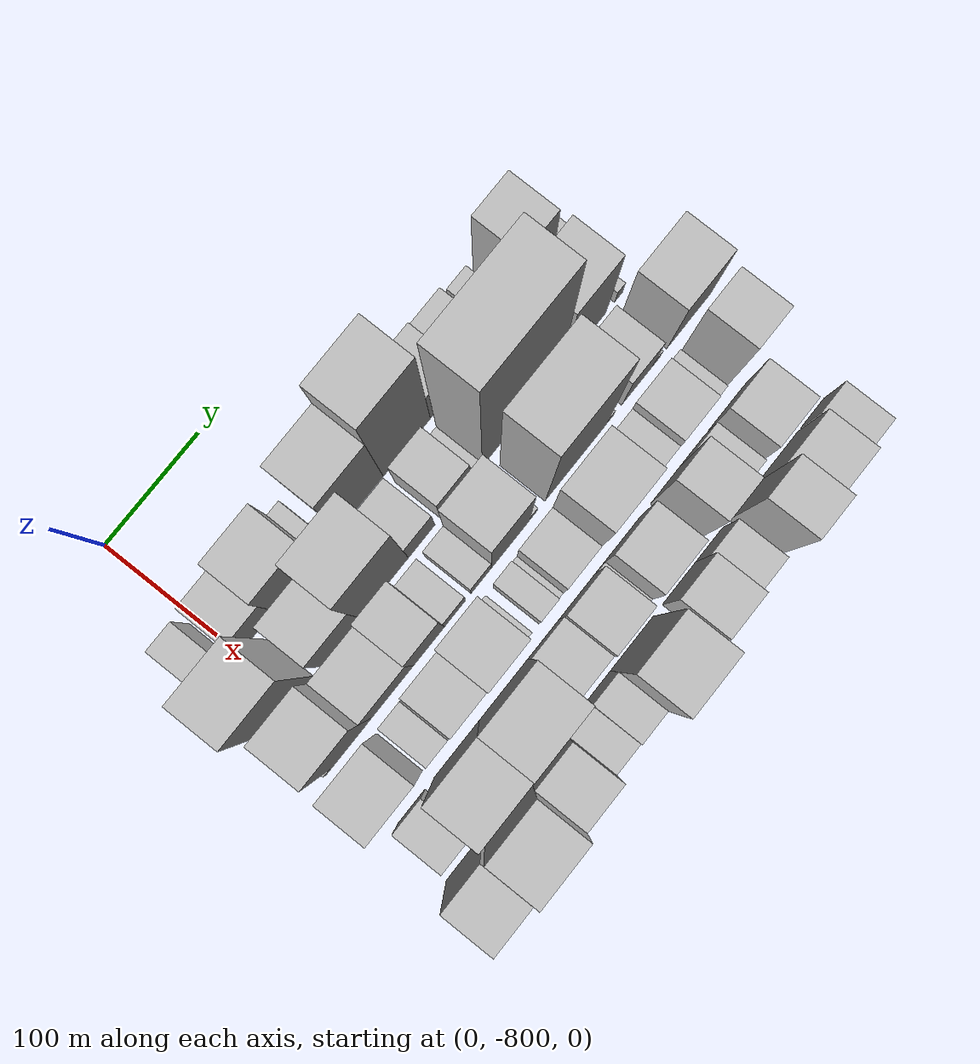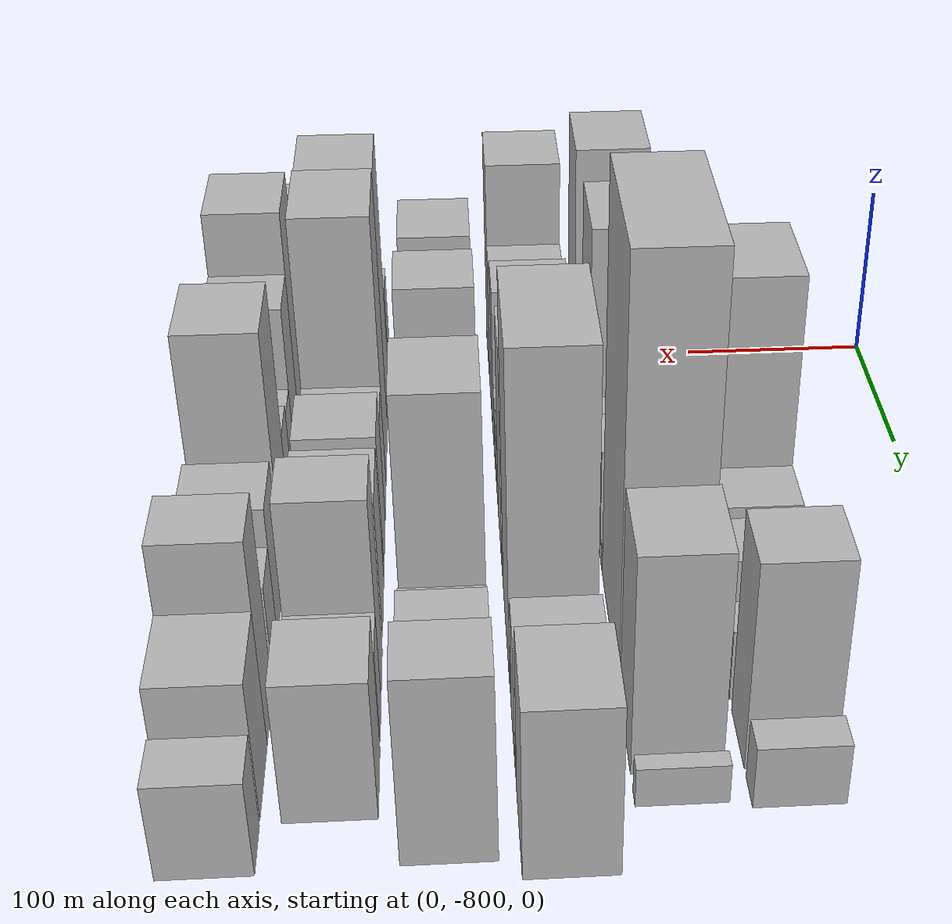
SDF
<sdf version="1.6">
 <world name="default">
  <model name="building_1">
   <static>1</static>
   <pose>100.0000 -817.6020 0 0.000000 0.000000 0.000000</pose>
   <link name="link">
    <pose>0 0 24.00 0 0 0</pose>
    <collision name="collision"><geometry><box><size>40.0000 24.7960 48.0000</size></box></geometry></collision>
    <visual name="visual">
     <cast_shadows>0</cast_shadows>
     <geometry><box><size>40.0000 24.7960 48.0000</size></box></geometry>
     <material>
      <script>
       <uri>model://HANNAS_wall/materials/scripts</uri>
       <uri>model://HANNAS_wall/materials/textures</uri>
       <name>vrc/HANNAS_wall</name>
      </script>
     </material>
    </visual>
   </link>
  </model>
  <model name="building_2">
   <static>1</static>
   <pose>100.0000 -778.4976 0 0.000000 0.000000 0.000000</pose>
   <link name="link">
    <pose>0 0 30.00 0 0 0</pose>
    <collision name="collision"><geometry><box><size>40.0000 33.4130 60.0000</size></box></geometry></collision>
    <visual name="visual">
     <cast_shadows>0</cast_shadows>
     <geometry><box><size>40.0000 33.4130 60.0000</size></box></geometry>
     <material>
      <script>
       <uri>model://HANNAS_wall/materials/scripts</uri>
       <uri>model://HANNAS_wall/materials/textures</uri>
       <name>vrc/HANNAS_wall</name>
      </script>
     </material>
    </visual>
   </link>
  </model>
  <model name="building_3">
   <static>1</static>
   <pose>100.0000 -737.9325 0 0.000000 0.000000 0.000000</pose>
   <link name="link">
    <pose>0 0 43.50 0 0 0</pose>
    <collision name="collision"><geometry><box><size>40.0000 47.7172 87.0000</size></box></geometry></collision>
    <visual name="visual">
     <cast_shadows>0</cast_shadows>
     <geometry><box><size>40.0000 47.7172 87.0000</size></box></geometry>
     <material>
      <script>
       <uri>model://HANNAS_wall/materials/scripts</uri>
       <uri>model://HANNAS_wall/materials/textures</uri>
       <name>vrc/HANNAS_wall</name>
      </script>
     </material>
    </visual>
   </link>
  </model>
  <model name="building_4">
   <static>1</static>
   <pose>100.0000 -707.8373 0 0.000000 0.000000 0.000000</pose>
   <link name="link">
    <pose>0 0 13.50 0 0 0</pose>
    <collision name="collision"><geometry><box><size>40.0000 12.4731 27.0000</size></box></geometry></collision>
    <visual name="visual">
     <cast_shadows>0</cast_shadows>
     <geometry><box><size>40.0000 12.4731 27.0000</size></box></geometry>
     <material>
      <script>
       <uri>model://HANNAS_wall/materials/scripts</uri>
       <uri>model://HANNAS_wall/materials/textures</uri>
       <name>vrc/HANNAS_wall</name>
      </script>
     </material>
    </visual>
   </link>
  </model>
  <model name="building_5">
   <static>1</static>
   <pose>100.0000 -667.6534 0 0.000000 0.000000 0.000000</pose>
   <link name="link">
    <pose>0 0 60.00 0 0 0</pose>
    <collision name="collision"><geometry><box><size>40.0000 47.8948 120.0000</size></box></geometry></collision>
    <visual name="visual">
     <cast_shadows>0</cast_shadows>
     <geometry><box><size>40.0000 47.8948 120.0000</size></box></geometry>
     <material>
      <script>
       <uri>model://HANNAS_wall/materials/scripts</uri>
       <uri>model://HANNAS_wall/materials/textures</uri>
       <name>vrc/HANNAS_wall</name>
      </script>
     </material>
    </visual>
   </link>
  </model>
  <model name="building_6">
   <static>1</static>
   <pose>100.0000 -617.7483 0 0.000000 0.000000 0.000000</pose>
   <link name="link">
    <pose>0 0 82.50 0 0 0</pose>
    <collision name="collision"><geometry><box><size>40.0000 51.9155 165.0000</size></box></geometry></collision>
    <visual name="visual">
     <cast_shadows>0</cast_shadows>
     <geometry><box><size>40.0000 51.9155 165.0000</size></box></geometry>
     <material>
      <script>
       <uri>model://HANNAS_wall/materials/scripts</uri>
       <uri>model://HANNAS_wall/materials/textures</uri>
       <name>vrc/HANNAS_wall</name>
      </script>
     </material>
    </visual>
   </link>
  </model>
  <model name="building_7">
   <static>1</static>
   <pose>100.0000 -575.8637 0 0.000000 0.000000 0.000000</pose>
   <link name="link">
    <pose>0 0 31.50 0 0 0</pose>
    <collision name="collision"><geometry><box><size>40.0000 31.8537 63.0000</size></box></geometry></collision>
    <visual name="visual">
     <cast_shadows>0</cast_shadows>
     <geometry><box><size>40.0000 31.8537 63.0000</size></box></geometry>
     <material>
      <script>
       <uri>model://HANNAS_wall/materials/scripts</uri>
       <uri>model://HANNAS_wall/materials/textures</uri>
       <name>vrc/HANNAS_wall</name>
      </script>
     </material>
    </visual>
   </link>
  </model>
  <model name="building_8">
   <static>1</static>
   <pose>100.0000 -543.9341 0 0.000000 0.000000 0.000000</pose>
   <link name="link">
    <pose>0 0 28.50 0 0 0</pose>
    <collision name="collision"><geometry><box><size>40.0000 32.0055 57.0000</size></box></geometry></collision>
    <visual name="visual">
     <cast_shadows>0</cast_shadows>
     <geometry><box><size>40.0000 32.0055 57.0000</size></box></geometry>
     <material>
      <script>
       <uri>model://HANNAS_wall/materials/scripts</uri>
       <uri>model://HANNAS_wall/materials/textures</uri>
       <name>vrc/HANNAS_wall</name>
      </script>
     </material>
    </visual>
   </link>
  </model>
  <model name="building_9">
   <static>1</static>
   <pose>100.0000 -511.4960 0 0.000000 0.000000 0.000000</pose>
   <link name="link">
    <pose>0 0 19.50 0 0 0</pose>
    <collision name="collision"><geometry><box><size>40.0000 20.8707 39.0000</size></box></geometry></collision>
    <visual name="visual">
     <cast_shadows>0</cast_shadows>
     <geometry><box><size>40.0000 20.8707 39.0000</size></box></geometry>
     <material>
      <script>
       <uri>model://HANNAS_wall/materials/scripts</uri>
       <uri>model://HANNAS_wall/materials/textures</uri>
       <name>vrc/HANNAS_wall</name>
      </script>
     </material>
    </visual>
   </link>
  </model>
  <model name="building_10">
   <static>1</static>
   <pose>100.0000 -475.5897 0 0.000000 0.000000 0.000000</pose>
   <link name="link">
    <pose>0 0 55.50 0 0 0</pose>
    <collision name="collision"><geometry><box><size>40.0000 36.9420 111.0000</size></box></geometry></collision>
    <visual name="visual">
     <cast_shadows>0</cast_shadows>
     <geometry><box><size>40.0000 36.9420 111.0000</size></box></geometry>
     <material>
      <script>
       <uri>model://HANNAS_wall/materials/scripts</uri>
       <uri>model://HANNAS_wall/materials/textures</uri>
       <name>vrc/HANNAS_wall</name>
      </script>
     </material>
    </visual>
   </link>
  </model>
  <model name="building_11">
   <static>1</static>
   <pose>100.0000 -443.1418 0 0.000000 0.000000 0.000000</pose>
   <link name="link">
    <pose>0 0 16.50 0 0 0</pose>
    <collision name="collision"><geometry><box><size>40.0000 17.9537 33.0000</size></box></geometry></collision>
    <visual name="visual">
     <cast_shadows>0</cast_shadows>
     <geometry><box><size>40.0000 17.9537 33.0000</size></box></geometry>
     <material>
      <script>
       <uri>model://HANNAS_wall/materials/scripts</uri>
       <uri>model://HANNAS_wall/materials/textures</uri>
       <name>vrc/HANNAS_wall</name>
      </script>
     </material>
    </visual>
   </link>
  </model>
  <model name="building_45">
   <static>1</static>
   <pose>149.0000 -804.9855 0 0.000000 0.000000 0.000000</pose>
   <link name="link">
    <pose>0 0 70.50 0 0 0</pose>
    <collision name="collision"><geometry><box><size>40.0000 50.0291 141.0000</size></box></geometry></collision>
    <visual name="visual">
     <cast_shadows>0</cast_shadows>
     <geometry><box><size>40.0000 50.0291 141.0000</size></box></geometry>
     <material>
      <script>
       <uri>model://HANNAS_wall/materials/scripts</uri>
       <uri>model://HANNAS_wall/materials/textures</uri>
       <name>vrc/HANNAS_wall</name>
      </script>
     </material>
    </visual>
   </link>
  </model>
  <model name="building_46">
   <static>1</static>
   <pose>149.0000 -750.7019 0 0.000000 0.000000 0.000000</pose>
   <link name="link">
    <pose>0 0 37.50 0 0 0</pose>
    <collision name="collision"><geometry><box><size>40.0000 42.5380 75.0000</size></box></geometry></collision>
    <visual name="visual">
     <cast_shadows>0</cast_shadows>
     <geometry><box><size>40.0000 42.5380 75.0000</size></box></geometry>
     <material>
      <script>
       <uri>model://HANNAS_wall/materials/scripts</uri>
       <uri>model://HANNAS_wall/materials/textures</uri>
       <name>vrc/HANNAS_wall</name>
      </script>
     </material>
    </visual>
   </link>
  </model>
  <model name="building_47">
   <static>1</static>
   <pose>149.0000 -703.0774 0 0.000000 0.000000 0.000000</pose>
   <link name="link">
    <pose>0 0 73.50 0 0 0</pose>
    <collision name="collision"><geometry><box><size>40.0000 52.7112 147.0000</size></box></geometry></collision>
    <visual name="visual">
     <cast_shadows>0</cast_shadows>
     <geometry><box><size>40.0000 52.7112 147.0000</size></box></geometry>
     <material>
      <script>
       <uri>model://HANNAS_wall/materials/scripts</uri>
       <uri>model://HANNAS_wall/materials/textures</uri>
       <name>vrc/HANNAS_wall</name>
      </script>
     </material>
    </visual>
   </link>
  </model>
  <model name="building_48">
   <static>1</static>
   <pose>149.0000 -662.2411 0 0.000000 0.000000 0.000000</pose>
   <link name="link">
    <pose>0 0 25.50 0 0 0</pose>
    <collision name="collision"><geometry><box><size>40.0000 28.9613 51.0000</size></box></geometry></collision>
    <visual name="visual">
     <cast_shadows>0</cast_shadows>
     <geometry><box><size>40.0000 28.9613 51.0000</size></box></geometry>
     <material>
      <script>
       <uri>model://HANNAS_wall/materials/scripts</uri>
       <uri>model://HANNAS_wall/materials/textures</uri>
       <name>vrc/HANNAS_wall</name>
      </script>
     </material>
    </visual>
   </link>
  </model>
  <model name="building_49">
   <static>1</static>
   <pose>149.0000 -624.8514 0 0.000000 0.000000 0.000000</pose>
   <link name="link">
    <pose>0 0 31.50 0 0 0</pose>
    <collision name="collision"><geometry><box><size>40.0000 33.8181 63.0000</size></box></geometry></collision>
    <visual name="visual">
     <cast_shadows>0</cast_shadows>
     <geometry><box><size>40.0000 33.8181 63.0000</size></box></geometry>
     <material>
      <script>
       <uri>model://HANNAS_wall/materials/scripts</uri>
       <uri>model://HANNAS_wall/materials/textures</uri>
       <name>vrc/HANNAS_wall</name>
      </script>
     </material>
    </visual>
   </link>
  </model>
  <model name="building_50">
   <static>1</static>
   <pose>149.0000 -599.2506 0 0.000000 0.000000 0.000000</pose>
   <link name="link">
    <pose>0 0 7.50 0 0 0</pose>
    <collision name="collision"><geometry><box><size>40.0000 7.3835 15.0000</size></box></geometry></collision>
    <visual name="visual">
     <cast_shadows>0</cast_shadows>
     <geometry><box><size>40.0000 7.3835 15.0000</size></box></geometry>
     <material>
      <script>
       <uri>model://HANNAS_wall/materials/scripts</uri>
       <uri>model://HANNAS_wall/materials/textures</uri>
       <name>vrc/HANNAS_wall</name>
      </script>
     </material>
    </visual>
   </link>
  </model>
  <model name="building_51">
   <static>1</static>
   <pose>149.0000 -552.5706 0 0.000000 0.000000 0.000000</pose>
   <link name="link">
    <pose>0 0 112.50 0 0 0</pose>
    <collision name="collision"><geometry><box><size>40.0000 85.9766 225.0000</size></box></geometry></collision>
    <visual name="visual">
     <cast_shadows>0</cast_shadows>
     <geometry><box><size>40.0000 85.9766 225.0000</size></box></geometry>
     <material>
      <script>
       <uri>model://HANNAS_wall/materials/scripts</uri>
       <uri>model://HANNAS_wall/materials/textures</uri>
       <name>vrc/HANNAS_wall</name>
      </script>
     </material>
    </visual>
   </link>
  </model>
  <model name="building_52">
   <static>1</static>
   <pose>149.0000 -480.2755 0 0.000000 0.000000 0.000000</pose>
   <link name="link">
    <pose>0 0 58.50 0 0 0</pose>
    <collision name="collision"><geometry><box><size>40.0000 46.6135 117.0000</size></box></geometry></collision>
    <visual name="visual">
     <cast_shadows>0</cast_shadows>
     <geometry><box><size>40.0000 46.6135 117.0000</size></box></geometry>
     <material>
      <script>
       <uri>model://HANNAS_wall/materials/scripts</uri>
       <uri>model://HANNAS_wall/materials/textures</uri>
       <name>vrc/HANNAS_wall</name>
      </script>
     </material>
    </visual>
   </link>
  </model>
  <model name="building_53">
   <static>1</static>
   <pose>149.0000 -442.4976 0 0.000000 0.000000 0.000000</pose>
   <link name="link">
    <pose>0 0 10.50 0 0 0</pose>
    <collision name="collision"><geometry><box><size>40.0000 8.9423 21.0000</size></box></geometry></collision>
    <visual name="visual">
     <cast_shadows>0</cast_shadows>
     <geometry><box><size>40.0000 8.9423 21.0000</size></box></geometry>
     <material>
      <script>
       <uri>model://HANNAS_wall/materials/scripts</uri>
       <uri>model://HANNAS_wall/materials/textures</uri>
       <name>vrc/HANNAS_wall</name>
      </script>
     </material>
    </visual>
   </link>
  </model>
  <model name="building_89">
   <static>1</static>
   <pose>198.0000 -822.9806 0 0.000000 0.000000 0.000000</pose>
   <link name="link">
    <pose>0 0 7.50 0 0 0</pose>
    <collision name="collision"><geometry><box><size>40.0000 6.0387 15.0000</size></box></geometry></collision>
    <visual name="visual">
     <cast_shadows>0</cast_shadows>
     <geometry><box><size>40.0000 6.0387 15.0000</size></box></geometry>
     <material>
      <script>
       <uri>model://HANNAS_wall/materials/scripts</uri>
       <uri>model://HANNAS_wall/materials/textures</uri>
       <name>vrc/HANNAS_wall</name>
      </script>
     </material>
    </visual>
   </link>
  </model>
  <model name="building_90">
   <static>1</static>
   <pose>198.0000 -798.2989 0 0.000000 0.000000 0.000000</pose>
   <link name="link">
    <pose>0 0 67.50 0 0 0</pose>
    <collision name="collision"><geometry><box><size>40.0000 43.3248 135.0000</size></box></geometry></collision>
    <visual name="visual">
     <cast_shadows>0</cast_shadows>
     <geometry><box><size>40.0000 43.3248 135.0000</size></box></geometry>
     <material>
      <script>
       <uri>model://HANNAS_wall/materials/scripts</uri>
       <uri>model://HANNAS_wall/materials/textures</uri>
       <name>vrc/HANNAS_wall</name>
      </script>
     </material>
    </visual>
   </link>
  </model>
  <model name="building_91">
   <static>1</static>
   <pose>198.0000 -754.1466 0 0.000000 0.000000 0.000000</pose>
   <link name="link">
    <pose>0 0 43.50 0 0 0</pose>
    <collision name="collision"><geometry><box><size>40.0000 44.9798 87.0000</size></box></geometry></collision>
    <visual name="visual">
     <cast_shadows>0</cast_shadows>
     <geometry><box><size>40.0000 44.9798 87.0000</size></box></geometry>
     <material>
      <script>
       <uri>model://HANNAS_wall/materials/scripts</uri>
       <uri>model://HANNAS_wall/materials/textures</uri>
       <name>vrc/HANNAS_wall</name>
      </script>
     </material>
    </visual>
   </link>
  </model>
  <model name="building_92">
   <static>1</static>
   <pose>198.0000 -714.8479 0 0.000000 0.000000 0.000000</pose>
   <link name="link">
    <pose>0 0 51.00 0 0 0</pose>
    <collision name="collision"><geometry><box><size>40.0000 33.6177 102.0000</size></box></geometry></collision>
    <visual name="visual">
     <cast_shadows>0</cast_shadows>
     <geometry><box><size>40.0000 33.6177 102.0000</size></box></geometry>
     <material>
      <script>
       <uri>model://HANNAS_wall/materials/scripts</uri>
       <uri>model://HANNAS_wall/materials/textures</uri>
       <name>vrc/HANNAS_wall</name>
      </script>
     </material>
    </visual>
   </link>
  </model>
  <model name="building_93">
   <static>1</static>
   <pose>198.0000 -686.5756 0 0.000000 0.000000 0.000000</pose>
   <link name="link">
    <pose>0 0 22.50 0 0 0</pose>
    <collision name="collision"><geometry><box><size>40.0000 22.9268 45.0000</size></box></geometry></collision>
    <visual name="visual">
     <cast_shadows>0</cast_shadows>
     <geometry><box><size>40.0000 22.9268 45.0000</size></box></geometry>
     <material>
      <script>
       <uri>model://HANNAS_wall/materials/scripts</uri>
       <uri>model://HANNAS_wall/materials/textures</uri>
       <name>vrc/HANNAS_wall</name>
      </script>
     </material>
    </visual>
   </link>
  </model>
  <model name="building_94">
   <static>1</static>
   <pose>198.0000 -658.2094 0 0.000000 0.000000 0.000000</pose>
   <link name="link">
    <pose>0 0 21.00 0 0 0</pose>
    <collision name="collision"><geometry><box><size>40.0000 21.8054 42.0000</size></box></geometry></collision>
    <visual name="visual">
     <cast_shadows>0</cast_shadows>
     <geometry><box><size>40.0000 21.8054 42.0000</size></box></geometry>
     <material>
      <script>
       <uri>model://HANNAS_wall/materials/scripts</uri>
       <uri>model://HANNAS_wall/materials/textures</uri>
       <name>vrc/HANNAS_wall</name>
      </script>
     </material>
    </visual>
   </link>
  </model>
  <model name="building_95">
   <static>1</static>
   <pose>198.0000 -626.3088 0 0.000000 0.000000 0.000000</pose>
   <link name="link">
    <pose>0 0 61.50 0 0 0</pose>
    <collision name="collision"><geometry><box><size>40.0000 41.9958 123.0000</size></box></geometry></collision>
    <visual name="visual">
     <cast_shadows>0</cast_shadows>
     <geometry><box><size>40.0000 41.9958 123.0000</size></box></geometry>
     <material>
      <script>
       <uri>model://HANNAS_wall/materials/scripts</uri>
       <uri>model://HANNAS_wall/materials/textures</uri>
       <name>vrc/HANNAS_wall</name>
      </script>
     </material>
    </visual>
   </link>
  </model>
  <model name="building_96">
   <static>1</static>
   <pose>198.0000 -600.9416 0 0.000000 0.000000 0.000000</pose>
   <link name="link">
    <pose>0 0 9.00 0 0 0</pose>
    <collision name="collision"><geometry><box><size>40.0000 8.7388 18.0000</size></box></geometry></collision>
    <visual name="visual">
     <cast_shadows>0</cast_shadows>
     <geometry><box><size>40.0000 8.7388 18.0000</size></box></geometry>
     <material>
      <script>
       <uri>model://HANNAS_wall/materials/scripts</uri>
       <uri>model://HANNAS_wall/materials/textures</uri>
       <name>vrc/HANNAS_wall</name>
      </script>
     </material>
    </visual>
   </link>
  </model>
  <model name="building_97">
   <static>1</static>
   <pose>198.0000 -553.2141 0 0.000000 0.000000 0.000000</pose>
   <link name="link">
    <pose>0 0 88.50 0 0 0</pose>
    <collision name="collision"><geometry><box><size>40.0000 68.7161 177.0000</size></box></geometry></collision>
    <visual name="visual">
     <cast_shadows>0</cast_shadows>
     <geometry><box><size>40.0000 68.7161 177.0000</size></box></geometry>
     <material>
      <script>
       <uri>model://HANNAS_wall/materials/scripts</uri>
       <uri>model://HANNAS_wall/materials/textures</uri>
       <name>vrc/HANNAS_wall</name>
      </script>
     </material>
    </visual>
   </link>
  </model>
  <model name="building_98">
   <static>1</static>
   <pose>198.0000 -515.2436 0 0.000000 0.000000 0.000000</pose>
   <link name="link">
    <pose>0 0 9.00 0 0 0</pose>
    <collision name="collision"><geometry><box><size>40.0000 7.2250 18.0000</size></box></geometry></collision>
    <visual name="visual">
     <cast_shadows>0</cast_shadows>
     <geometry><box><size>40.0000 7.2250 18.0000</size></box></geometry>
     <material>
      <script>
       <uri>model://HANNAS_wall/materials/scripts</uri>
       <uri>model://HANNAS_wall/materials/textures</uri>
       <name>vrc/HANNAS_wall</name>
      </script>
     </material>
    </visual>
   </link>
  </model>
  <model name="building_99">
   <static>1</static>
   <pose>198.0000 -484.4618 0 0.000000 0.000000 0.000000</pose>
   <link name="link">
    <pose>0 0 31.50 0 0 0</pose>
    <collision name="collision"><geometry><box><size>40.0000 34.3386 63.0000</size></box></geometry></collision>
    <visual name="visual">
     <cast_shadows>0</cast_shadows>
     <geometry><box><size>40.0000 34.3386 63.0000</size></box></geometry>
     <material>
      <script>
       <uri>model://HANNAS_wall/materials/scripts</uri>
       <uri>model://HANNAS_wall/materials/textures</uri>
       <name>vrc/HANNAS_wall</name>
      </script>
     </material>
    </visual>
   </link>
  </model>
  <model name="building_100">
   <static>1</static>
   <pose>198.0000 -462.9254 0 0.000000 0.000000 0.000000</pose>
   <link name="link">
    <pose>0 0 9.00 0 0 0</pose>
    <collision name="collision"><geometry><box><size>40.0000 8.7342 18.0000</size></box></geometry></collision>
    <visual name="visual">
     <cast_shadows>0</cast_shadows>
     <geometry><box><size>40.0000 8.7342 18.0000</size></box></geometry>
     <material>
      <script>
       <uri>model://HANNAS_wall/materials/scripts</uri>
       <uri>model://HANNAS_wall/materials/textures</uri>
       <name>vrc/HANNAS_wall</name>
      </script>
     </material>
    </visual>
   </link>
  </model>
  <model name="building_101">
   <static>1</static>
   <pose>198.0000 -425.8207 0 0.000000 0.000000 0.000000</pose>
   <link name="link">
    <pose>0 0 45.00 0 0 0</pose>
    <collision name="collision"><geometry><box><size>40.0000 49.4753 90.0000</size></box></geometry></collision>
    <visual name="visual">
     <cast_shadows>0</cast_shadows>
     <geometry><box><size>40.0000 49.4753 90.0000</size></box></geometry>
     <material>
      <script>
       <uri>model://HANNAS_wall/materials/scripts</uri>
       <uri>model://HANNAS_wall/materials/textures</uri>
       <name>vrc/HANNAS_wall</name>
      </script>
     </material>
    </visual>
   </link>
  </model>
  <model name="building_134">
   <static>1</static>
   <pose>247.0000 -806.5773 0 0.000000 0.000000 0.000000</pose>
   <link name="link">
    <pose>0 0 45.00 0 0 0</pose>
    <collision name="collision"><geometry><box><size>40.0000 46.8454 90.0000</size></box></geometry></collision>
    <visual name="visual">
     <cast_shadows>0</cast_shadows>
     <geometry><box><size>40.0000 46.8454 90.0000</size></box></geometry>
     <material>
      <script>
       <uri>model://HANNAS_wall/materials/scripts</uri>
       <uri>model://HANNAS_wall/materials/textures</uri>
       <name>vrc/HANNAS_wall</name>
      </script>
     </material>
    </visual>
   </link>
  </model>
  <model name="building_135">
   <static>1</static>
   <pose>247.0000 -764.8565 0 0.000000 0.000000 0.000000</pose>
   <link name="link">
    <pose>0 0 21.00 0 0 0</pose>
    <collision name="collision"><geometry><box><size>40.0000 22.5961 42.0000</size></box></geometry></collision>
    <visual name="visual">
     <cast_shadows>0</cast_shadows>
     <geometry><box><size>40.0000 22.5961 42.0000</size></box></geometry>
     <material>
      <script>
       <uri>model://HANNAS_wall/materials/scripts</uri>
       <uri>model://HANNAS_wall/materials/textures</uri>
       <name>vrc/HANNAS_wall</name>
      </script>
     </material>
    </visual>
   </link>
  </model>
  <model name="building_136">
   <static>1</static>
   <pose>247.0000 -730.6687 0 0.000000 0.000000 0.000000</pose>
   <link name="link">
    <pose>0 0 37.50 0 0 0</pose>
    <collision name="collision"><geometry><box><size>40.0000 37.7795 75.0000</size></box></geometry></collision>
    <visual name="visual">
     <cast_shadows>0</cast_shadows>
     <geometry><box><size>40.0000 37.7795 75.0000</size></box></geometry>
     <material>
      <script>
       <uri>model://HANNAS_wall/materials/scripts</uri>
       <uri>model://HANNAS_wall/materials/textures</uri>
       <name>vrc/HANNAS_wall</name>
      </script>
     </material>
    </visual>
   </link>
  </model>
  <model name="building_137">
   <static>1</static>
   <pose>247.0000 -691.8126 0 0.000000 0.000000 0.000000</pose>
   <link name="link">
    <pose>0 0 60.00 0 0 0</pose>
    <collision name="collision"><geometry><box><size>40.0000 39.9328 120.0000</size></box></geometry></collision>
    <visual name="visual">
     <cast_shadows>0</cast_shadows>
     <geometry><box><size>40.0000 39.9328 120.0000</size></box></geometry>
     <material>
      <script>
       <uri>model://HANNAS_wall/materials/scripts</uri>
       <uri>model://HANNAS_wall/materials/textures</uri>
       <name>vrc/HANNAS_wall</name>
      </script>
     </material>
    </visual>
   </link>
  </model>
  <model name="building_138">
   <static>1</static>
   <pose>247.0000 -668.2291 0 0.000000 0.000000 0.000000</pose>
   <link name="link">
    <pose>0 0 9.00 0 0 0</pose>
    <collision name="collision"><geometry><box><size>40.0000 7.2340 18.0000</size></box></geometry></collision>
    <visual name="visual">
     <cast_shadows>0</cast_shadows>
     <geometry><box><size>40.0000 7.2340 18.0000</size></box></geometry>
     <material>
      <script>
       <uri>model://HANNAS_wall/materials/scripts</uri>
       <uri>model://HANNAS_wall/materials/textures</uri>
       <name>vrc/HANNAS_wall</name>
      </script>
     </material>
    </visual>
   </link>
  </model>
  <model name="building_139">
   <static>1</static>
   <pose>247.0000 -646.8576 0 0.000000 0.000000 0.000000</pose>
   <link name="link">
    <pose>0 0 19.50 0 0 0</pose>
    <collision name="collision"><geometry><box><size>40.0000 19.5092 39.0000</size></box></geometry></collision>
    <visual name="visual">
     <cast_shadows>0</cast_shadows>
     <geometry><box><size>40.0000 19.5092 39.0000</size></box></geometry>
     <material>
      <script>
       <uri>model://HANNAS_wall/materials/scripts</uri>
       <uri>model://HANNAS_wall/materials/textures</uri>
       <name>vrc/HANNAS_wall</name>
      </script>
     </material>
    </visual>
   </link>
  </model>
  <model name="building_140">
   <static>1</static>
   <pose>247.0000 -633.8950 0 0.000000 0.000000 0.000000</pose>
   <link name="link">
    <pose>0 0 7.50 0 0 0</pose>
    <collision name="collision"><geometry><box><size>40.0000 6.4160 15.0000</size></box></geometry></collision>
    <visual name="visual">
     <cast_shadows>0</cast_shadows>
     <geometry><box><size>40.0000 6.4160 15.0000</size></box></geometry>
     <material>
      <script>
       <uri>model://HANNAS_wall/materials/scripts</uri>
       <uri>model://HANNAS_wall/materials/textures</uri>
       <name>vrc/HANNAS_wall</name>
      </script>
     </material>
    </visual>
   </link>
  </model>
  <model name="building_141">
   <static>1</static>
   <pose>247.0000 -613.1450 0 0.000000 0.000000 0.000000</pose>
   <link name="link">
    <pose>0 0 30.00 0 0 0</pose>
    <collision name="collision"><geometry><box><size>40.0000 35.0841 60.0000</size></box></geometry></collision>
    <visual name="visual">
     <cast_shadows>0</cast_shadows>
     <geometry><box><size>40.0000 35.0841 60.0000</size></box></geometry>
     <material>
      <script>
       <uri>model://HANNAS_wall/materials/scripts</uri>
       <uri>model://HANNAS_wall/materials/textures</uri>
       <name>vrc/HANNAS_wall</name>
      </script>
     </material>
    </visual>
   </link>
  </model>
  <model name="building_142">
   <static>1</static>
   <pose>247.0000 -571.7905 0 0.000000 0.000000 0.000000</pose>
   <link name="link">
    <pose>0 0 69.00 0 0 0</pose>
    <collision name="collision"><geometry><box><size>40.0000 47.6249 138.0000</size></box></geometry></collision>
    <visual name="visual">
     <cast_shadows>0</cast_shadows>
     <geometry><box><size>40.0000 47.6249 138.0000</size></box></geometry>
     <material>
      <script>
       <uri>model://HANNAS_wall/materials/scripts</uri>
       <uri>model://HANNAS_wall/materials/textures</uri>
       <name>vrc/HANNAS_wall</name>
      </script>
     </material>
    </visual>
   </link>
  </model>
  <model name="building_143">
   <static>1</static>
   <pose>247.0000 -543.9633 0 0.000000 0.000000 0.000000</pose>
   <link name="link">
    <pose>0 0 9.00 0 0 0</pose>
    <collision name="collision"><geometry><box><size>40.0000 8.0296 18.0000</size></box></geometry></collision>
    <visual name="visual">
     <cast_shadows>0</cast_shadows>
     <geometry><box><size>40.0000 8.0296 18.0000</size></box></geometry>
     <material>
      <script>
       <uri>model://HANNAS_wall/materials/scripts</uri>
       <uri>model://HANNAS_wall/materials/textures</uri>
       <name>vrc/HANNAS_wall</name>
      </script>
     </material>
    </visual>
   </link>
  </model>
  <model name="building_144">
   <static>1</static>
   <pose>247.0000 -536.8219 0 0.000000 0.000000 0.000000</pose>
   <link name="link">
    <pose>0 0 7.50 0 0 0</pose>
    <collision name="collision"><geometry><box><size>40.0000 6.2531 15.0000</size></box></geometry></collision>
    <visual name="visual">
     <cast_shadows>0</cast_shadows>
     <geometry><box><size>40.0000 6.2531 15.0000</size></box></geometry>
     <material>
      <script>
       <uri>model://HANNAS_wall/materials/scripts</uri>
       <uri>model://HANNAS_wall/materials/textures</uri>
       <name>vrc/HANNAS_wall</name>
      </script>
     </material>
    </visual>
   </link>
  </model>
  <model name="building_145">
   <static>1</static>
   <pose>247.0000 -521.7764 0 0.000000 0.000000 0.000000</pose>
   <link name="link">
    <pose>0 0 22.50 0 0 0</pose>
    <collision name="collision"><geometry><box><size>40.0000 23.8380 45.0000</size></box></geometry></collision>
    <visual name="visual">
     <cast_shadows>0</cast_shadows>
     <geometry><box><size>40.0000 23.8380 45.0000</size></box></geometry>
     <material>
      <script>
       <uri>model://HANNAS_wall/materials/scripts</uri>
       <uri>model://HANNAS_wall/materials/textures</uri>
       <name>vrc/HANNAS_wall</name>
      </script>
     </material>
    </visual>
   </link>
  </model>
  <model name="building_146">
   <static>1</static>
   <pose>247.0000 -491.2194 0 0.000000 0.000000 0.000000</pose>
   <link name="link">
    <pose>0 0 31.50 0 0 0</pose>
    <collision name="collision"><geometry><box><size>40.0000 37.2759 63.0000</size></box></geometry></collision>
    <visual name="visual">
     <cast_shadows>0</cast_shadows>
     <geometry><box><size>40.0000 37.2759 63.0000</size></box></geometry>
     <material>
      <script>
       <uri>model://HANNAS_wall/materials/scripts</uri>
       <uri>model://HANNAS_wall/materials/textures</uri>
       <name>vrc/HANNAS_wall</name>
      </script>
     </material>
    </visual>
   </link>
  </model>
  <model name="building_147">
   <static>1</static>
   <pose>247.0000 -463.7680 0 0.000000 0.000000 0.000000</pose>
   <link name="link">
    <pose>0 0 16.50 0 0 0</pose>
    <collision name="collision"><geometry><box><size>40.0000 17.6268 33.0000</size></box></geometry></collision>
    <visual name="visual">
     <cast_shadows>0</cast_shadows>
     <geometry><box><size>40.0000 17.6268 33.0000</size></box></geometry>
     <material>
      <script>
       <uri>model://HANNAS_wall/materials/scripts</uri>
       <uri>model://HANNAS_wall/materials/textures</uri>
       <name>vrc/HANNAS_wall</name>
      </script>
     </material>
    </visual>
   </link>
  </model>
  <model name="building_148">
   <static>1</static>
   <pose>247.0000 -428.7593 0 0.000000 0.000000 0.000000</pose>
   <link name="link">
    <pose>0 0 49.50 0 0 0</pose>
    <collision name="collision"><geometry><box><size>40.0000 34.3906 99.0000</size></box></geometry></collision>
    <visual name="visual">
     <cast_shadows>0</cast_shadows>
     <geometry><box><size>40.0000 34.3906 99.0000</size></box></geometry>
     <material>
      <script>
       <uri>model://HANNAS_wall/materials/scripts</uri>
       <uri>model://HANNAS_wall/materials/textures</uri>
       <name>vrc/HANNAS_wall</name>
      </script>
     </material>
    </visual>
   </link>
  </model>
  <model name="building_185">
   <static>1</static>
   <pose>296.0000 -806.3878 0 0.000000 0.000000 0.000000</pose>
   <link name="link">
    <pose>0 0 25.50 0 0 0</pose>
    <collision name="collision"><geometry><box><size>40.0000 29.2244 51.0000</size></box></geometry></collision>
    <visual name="visual">
     <cast_shadows>0</cast_shadows>
     <geometry><box><size>40.0000 29.2244 51.0000</size></box></geometry>
     <material>
      <script>
       <uri>model://HANNAS_wall/materials/scripts</uri>
       <uri>model://HANNAS_wall/materials/textures</uri>
       <name>vrc/HANNAS_wall</name>
      </script>
     </material>
    </visual>
   </link>
  </model>
  <model name="building_186">
   <static>1</static>
   <pose>296.0000 -757.3892 0 0.000000 0.000000 0.000000</pose>
   <link name="link">
    <pose>0 0 76.50 0 0 0</pose>
    <collision name="collision"><geometry><box><size>40.0000 48.7728 153.0000</size></box></geometry></collision>
    <visual name="visual">
     <cast_shadows>0</cast_shadows>
     <geometry><box><size>40.0000 48.7728 153.0000</size></box></geometry>
     <material>
      <script>
       <uri>model://HANNAS_wall/materials/scripts</uri>
       <uri>model://HANNAS_wall/materials/textures</uri>
       <name>vrc/HANNAS_wall</name>
      </script>
     </material>
    </visual>
   </link>
  </model>
  <model name="building_187">
   <static>1</static>
   <pose>296.0000 -706.3360 0 0.000000 0.000000 0.000000</pose>
   <link name="link">
    <pose>0 0 78.00 0 0 0</pose>
    <collision name="collision"><geometry><box><size>40.0000 53.3334 156.0000</size></box></geometry></collision>
    <visual name="visual">
     <cast_shadows>0</cast_shadows>
     <geometry><box><size>40.0000 53.3334 156.0000</size></box></geometry>
     <material>
      <script>
       <uri>model://HANNAS_wall/materials/scripts</uri>
       <uri>model://HANNAS_wall/materials/textures</uri>
       <name>vrc/HANNAS_wall</name>
      </script>
     </material>
    </visual>
   </link>
  </model>
  <model name="building_188">
   <static>1</static>
   <pose>296.0000 -662.6631 0 0.000000 0.000000 0.000000</pose>
   <link name="link">
    <pose>0 0 30.00 0 0 0</pose>
    <collision name="collision"><geometry><box><size>40.0000 34.0124 60.0000</size></box></geometry></collision>
    <visual name="visual">
     <cast_shadows>0</cast_shadows>
     <geometry><box><size>40.0000 34.0124 60.0000</size></box></geometry>
     <material>
      <script>
       <uri>model://HANNAS_wall/materials/scripts</uri>
       <uri>model://HANNAS_wall/materials/textures</uri>
       <name>vrc/HANNAS_wall</name>
      </script>
     </material>
    </visual>
   </link>
  </model>
  <model name="building_189">
   <static>1</static>
   <pose>296.0000 -625.8729 0 0.000000 0.000000 0.000000</pose>
   <link name="link">
    <pose>0 0 39.00 0 0 0</pose>
    <collision name="collision"><geometry><box><size>40.0000 39.5681 78.0000</size></box></geometry></collision>
    <visual name="visual">
     <cast_shadows>0</cast_shadows>
     <geometry><box><size>40.0000 39.5681 78.0000</size></box></geometry>
     <material>
      <script>
       <uri>model://HANNAS_wall/materials/scripts</uri>
       <uri>model://HANNAS_wall/materials/textures</uri>
       <name>vrc/HANNAS_wall</name>
      </script>
     </material>
    </visual>
   </link>
  </model>
  <model name="building_190">
   <static>1</static>
   <pose>296.0000 -601.7254 0 0.000000 0.000000 0.000000</pose>
   <link name="link">
    <pose>0 0 10.50 0 0 0</pose>
    <collision name="collision"><geometry><box><size>40.0000 8.7269 21.0000</size></box></geometry></collision>
    <visual name="visual">
     <cast_shadows>0</cast_shadows>
     <geometry><box><size>40.0000 8.7269 21.0000</size></box></geometry>
     <material>
      <script>
       <uri>model://HANNAS_wall/materials/scripts</uri>
       <uri>model://HANNAS_wall/materials/textures</uri>
       <name>vrc/HANNAS_wall</name>
      </script>
     </material>
    </visual>
   </link>
  </model>
  <model name="building_191">
   <static>1</static>
   <pose>296.0000 -575.7042 0 0.000000 0.000000 0.000000</pose>
   <link name="link">
    <pose>0 0 39.00 0 0 0</pose>
    <collision name="collision"><geometry><box><size>40.0000 43.3155 78.0000</size></box></geometry></collision>
    <visual name="visual">
     <cast_shadows>0</cast_shadows>
     <geometry><box><size>40.0000 43.3155 78.0000</size></box></geometry>
     <material>
      <script>
       <uri>model://HANNAS_wall/materials/scripts</uri>
       <uri>model://HANNAS_wall/materials/textures</uri>
       <name>vrc/HANNAS_wall</name>
      </script>
     </material>
    </visual>
   </link>
  </model>
  <model name="building_192">
   <static>1</static>
   <pose>296.0000 -527.1938 0 0.000000 0.000000 0.000000</pose>
   <link name="link">
    <pose>0 0 55.50 0 0 0</pose>
    <collision name="collision"><geometry><box><size>40.0000 33.7053 111.0000</size></box></geometry></collision>
    <visual name="visual">
     <cast_shadows>0</cast_shadows>
     <geometry><box><size>40.0000 33.7053 111.0000</size></box></geometry>
     <material>
      <script>
       <uri>model://HANNAS_wall/materials/scripts</uri>
       <uri>model://HANNAS_wall/materials/textures</uri>
       <name>vrc/HANNAS_wall</name>
      </script>
     </material>
    </visual>
   </link>
  </model>
  <model name="building_193">
   <static>1</static>
   <pose>296.0000 -497.0886 0 0.000000 0.000000 0.000000</pose>
   <link name="link">
    <pose>0 0 25.50 0 0 0</pose>
    <collision name="collision"><geometry><box><size>40.0000 26.5051 51.0000</size></box></geometry></collision>
    <visual name="visual">
     <cast_shadows>0</cast_shadows>
     <geometry><box><size>40.0000 26.5051 51.0000</size></box></geometry>
     <material>
      <script>
       <uri>model://HANNAS_wall/materials/scripts</uri>
       <uri>model://HANNAS_wall/materials/textures</uri>
       <name>vrc/HANNAS_wall</name>
      </script>
     </material>
    </visual>
   </link>
  </model>
  <model name="building_194">
   <static>1</static>
   <pose>296.0000 -458.3563 0 0.000000 0.000000 0.000000</pose>
   <link name="link">
    <pose>0 0 37.50 0 0 0</pose>
    <collision name="collision"><geometry><box><size>40.0000 40.9594 75.0000</size></box></geometry></collision>
    <visual name="visual">
     <cast_shadows>0</cast_shadows>
     <geometry><box><size>40.0000 40.9594 75.0000</size></box></geometry>
     <material>
      <script>
       <uri>model://HANNAS_wall/materials/scripts</uri>
       <uri>model://HANNAS_wall/materials/textures</uri>
       <name>vrc/HANNAS_wall</name>
      </script>
     </material>
    </visual>
   </link>
  </model>
  <model name="building_232">
   <static>1</static>
   <pose>345.0000 -811.2470 0 0.000000 0.000000 0.000000</pose>
   <link name="link">
    <pose>0 0 51.00 0 0 0</pose>
    <collision name="collision"><geometry><box><size>40.0000 37.5060 102.0000</size></box></geometry></collision>
    <visual name="visual">
     <cast_shadows>0</cast_shadows>
     <geometry><box><size>40.0000 37.5060 102.0000</size></box></geometry>
     <material>
      <script>
       <uri>model://HANNAS_wall/materials/scripts</uri>
       <uri>model://HANNAS_wall/materials/textures</uri>
       <name>vrc/HANNAS_wall</name>
      </script>
     </material>
    </visual>
   </link>
  </model>
  <model name="building_233">
   <static>1</static>
   <pose>345.0000 -764.4509 0 0.000000 0.000000 0.000000</pose>
   <link name="link">
    <pose>0 0 64.50 0 0 0</pose>
    <collision name="collision"><geometry><box><size>40.0000 48.0862 129.0000</size></box></geometry></collision>
    <visual name="visual">
     <cast_shadows>0</cast_shadows>
     <geometry><box><size>40.0000 48.0862 129.0000</size></box></geometry>
     <material>
      <script>
       <uri>model://HANNAS_wall/materials/scripts</uri>
       <uri>model://HANNAS_wall/materials/textures</uri>
       <name>vrc/HANNAS_wall</name>
      </script>
     </material>
    </visual>
   </link>
  </model>
  <model name="building_234">
   <static>1</static>
   <pose>345.0000 -721.8844 0 0.000000 0.000000 0.000000</pose>
   <link name="link">
    <pose>0 0 46.50 0 0 0</pose>
    <collision name="collision"><geometry><box><size>40.0000 37.0468 93.0000</size></box></geometry></collision>
    <visual name="visual">
     <cast_shadows>0</cast_shadows>
     <geometry><box><size>40.0000 37.0468 93.0000</size></box></geometry>
     <material>
      <script>
       <uri>model://HANNAS_wall/materials/scripts</uri>
       <uri>model://HANNAS_wall/materials/textures</uri>
       <name>vrc/HANNAS_wall</name>
      </script>
     </material>
    </visual>
   </link>
  </model>
  <model name="building_235">
   <static>1</static>
   <pose>345.0000 -690.7448 0 0.000000 0.000000 0.000000</pose>
   <link name="link">
    <pose>0 0 22.50 0 0 0</pose>
    <collision name="collision"><geometry><box><size>40.0000 25.2324 45.0000</size></box></geometry></collision>
    <visual name="visual">
     <cast_shadows>0</cast_shadows>
     <geometry><box><size>40.0000 25.2324 45.0000</size></box></geometry>
     <material>
      <script>
       <uri>model://HANNAS_wall/materials/scripts</uri>
       <uri>model://HANNAS_wall/materials/textures</uri>
       <name>vrc/HANNAS_wall</name>
      </script>
     </material>
    </visual>
   </link>
  </model>
  <model name="building_236">
   <static>1</static>
   <pose>345.0000 -664.6277 0 0.000000 0.000000 0.000000</pose>
   <link name="link">
    <pose>0 0 25.50 0 0 0</pose>
    <collision name="collision"><geometry><box><size>40.0000 27.0018 51.0000</size></box></geometry></collision>
    <visual name="visual">
     <cast_shadows>0</cast_shadows>
     <geometry><box><size>40.0000 27.0018 51.0000</size></box></geometry>
     <material>
      <script>
       <uri>model://HANNAS_wall/materials/scripts</uri>
       <uri>model://HANNAS_wall/materials/textures</uri>
       <name>vrc/HANNAS_wall</name>
      </script>
     </material>
    </visual>
   </link>
  </model>
  <model name="building_237">
   <static>1</static>
   <pose>345.0000 -627.3896 0 0.000000 0.000000 0.000000</pose>
   <link name="link">
    <pose>0 0 69.00 0 0 0</pose>
    <collision name="collision"><geometry><box><size>40.0000 47.4745 138.0000</size></box></geometry></collision>
    <visual name="visual">
     <cast_shadows>0</cast_shadows>
     <geometry><box><size>40.0000 47.4745 138.0000</size></box></geometry>
     <material>
      <script>
       <uri>model://HANNAS_wall/materials/scripts</uri>
       <uri>model://HANNAS_wall/materials/textures</uri>
       <name>vrc/HANNAS_wall</name>
      </script>
     </material>
    </visual>
   </link>
  </model>
  <model name="building_238">
   <static>1</static>
   <pose>345.0000 -574.8267 0 0.000000 0.000000 0.000000</pose>
   <link name="link">
    <pose>0 0 37.50 0 0 0</pose>
    <collision name="collision"><geometry><box><size>40.0000 37.6514 75.0000</size></box></geometry></collision>
    <visual name="visual">
     <cast_shadows>0</cast_shadows>
     <geometry><box><size>40.0000 37.6514 75.0000</size></box></geometry>
     <material>
      <script>
       <uri>model://HANNAS_wall/materials/scripts</uri>
       <uri>model://HANNAS_wall/materials/textures</uri>
       <name>vrc/HANNAS_wall</name>
      </script>
     </material>
    </visual>
   </link>
  </model>
  <model name="building_239">
   <static>1</static>
   <pose>345.0000 -540.9378 0 0.000000 0.000000 0.000000</pose>
   <link name="link">
    <pose>0 0 27.00 0 0 0</pose>
    <collision name="collision"><geometry><box><size>40.0000 30.1262 54.0000</size></box></geometry></collision>
    <visual name="visual">
     <cast_shadows>0</cast_shadows>
     <geometry><box><size>40.0000 30.1262 54.0000</size></box></geometry>
     <material>
      <script>
       <uri>model://HANNAS_wall/materials/scripts</uri>
       <uri>model://HANNAS_wall/materials/textures</uri>
       <name>vrc/HANNAS_wall</name>
      </script>
     </material>
    </visual>
   </link>
  </model>
  <model name="building_240">
   <static>1</static>
   <pose>345.0000 -501.8617 0 0.000000 0.000000 0.000000</pose>
   <link name="link">
    <pose>0 0 55.50 0 0 0</pose>
    <collision name="collision"><geometry><box><size>40.0000 34.0261 111.0000</size></box></geometry></collision>
    <visual name="visual">
     <cast_shadows>0</cast_shadows>
     <geometry><box><size>40.0000 34.0261 111.0000</size></box></geometry>
     <material>
      <script>
       <uri>model://HANNAS_wall/materials/scripts</uri>
       <uri>model://HANNAS_wall/materials/textures</uri>
       <name>vrc/HANNAS_wall</name>
      </script>
     </material>
    </visual>
   </link>
  </model>
  <model name="building_241">
   <static>1</static>
   <pose>345.0000 -462.5072 0 0.000000 0.000000 0.000000</pose>
   <link name="link">
    <pose>0 0 37.50 0 0 0</pose>
    <collision name="collision"><geometry><box><size>40.0000 44.6830 75.0000</size></box></geometry></collision>
    <visual name="visual">
     <cast_shadows>0</cast_shadows>
     <geometry><box><size>40.0000 44.6830 75.0000</size></box></geometry>
     <material>
      <script>
       <uri>model://HANNAS_wall/materials/scripts</uri>
       <uri>model://HANNAS_wall/materials/textures</uri>
       <name>vrc/HANNAS_wall</name>
      </script>
     </material>
    </visual>
   </link>
  </model>
  <model name="building_242">
   <static>1</static>
   <pose>345.0000 -423.5875 0 0.000000 0.000000 0.000000</pose>
   <link name="link">
    <pose>0 0 25.50 0 0 0</pose>
    <collision name="collision"><geometry><box><size>40.0000 27.1564 51.0000</size></box></geometry></collision>
    <visual name="visual">
     <cast_shadows>0</cast_shadows>
     <geometry><box><size>40.0000 27.1564 51.0000</size></box></geometry>
     <material>
      <script>
       <uri>model://HANNAS_wall/materials/scripts</uri>
       <uri>model://HANNAS_wall/materials/textures</uri>
       <name>vrc/HANNAS_wall</name>
      </script>
     </material>
    </visual>
   </link>
  </model>
 </world>
</sdf>
